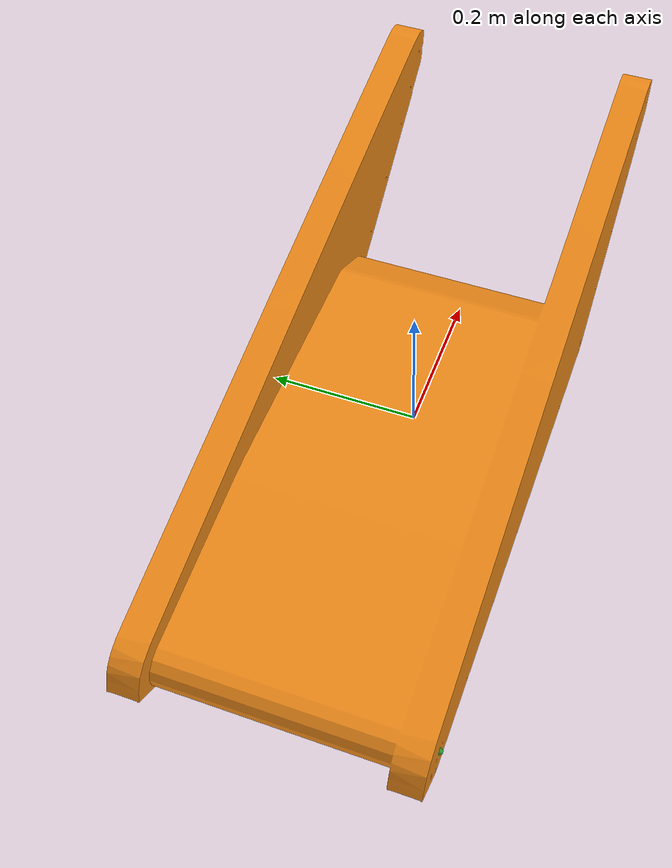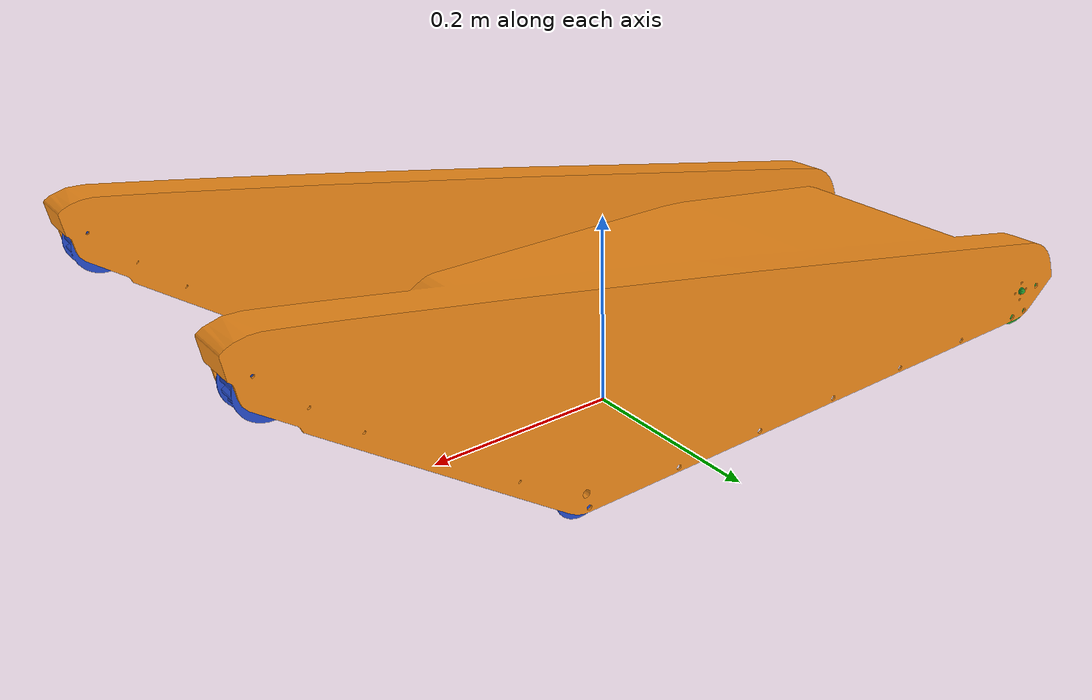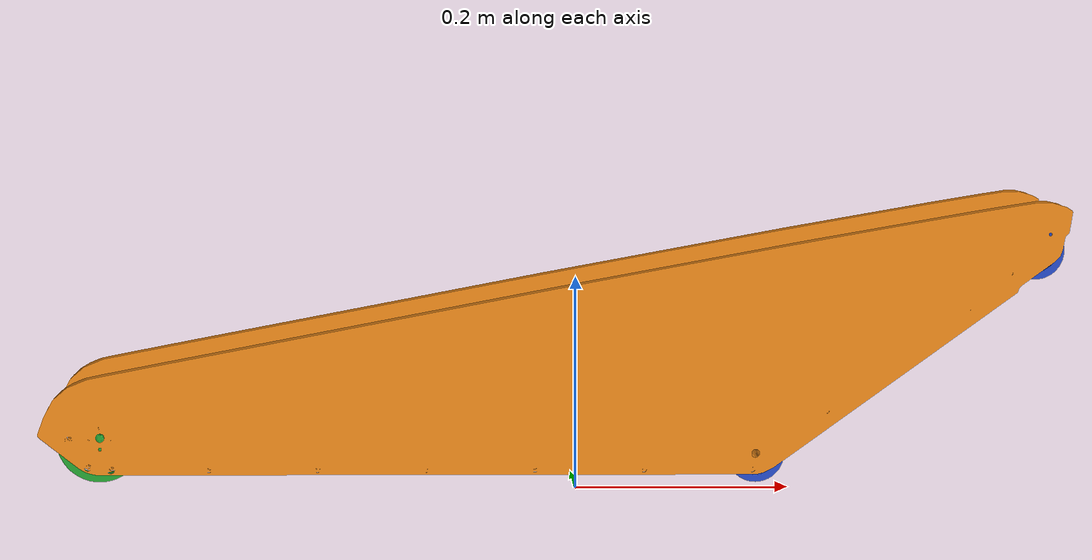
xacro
<?xml version='1.0'?>

<robot name="car" xmlns:xacro="http://www.ros.org/wiki/xacro">

  <xacro:include filename="$(find car_description)/urdf/mycar.gazebo"/>
  <xacro:include filename="$(find car_description)/urdf/materials.xacro"/>
  <xacro:include filename="$(find car_description)/urdf/macros.xacro"/>

  <xacro:macro name="transmission_block" params="joint_name idx">
      <transmission name="tran_${idx}">
        <type>transmission_interface/SimpleTransmission</type>
        <joint name="${joint_name}">
          <hardwareInterface>hardware_interface/EffortJointInterface</hardwareInterface>
        </joint>
        <actuator name="motor__${idx}">
          <hardwareInterface>hardware_interface/EffortJointInterface</hardwareInterface>
          <mechanicalReduction>1</mechanicalReduction>
        </actuator>
      </transmission>
  </xacro:macro>

<!-- base link -->
  <link name='base_link'>
    <inertial>
      <mass value="3.58774221136614"/>
      <origin xyz="0.0 0.0 0.094077" rpy="0 0 1.570795" />
      <inertia
        ixx="0.183425135997034"
        ixy="0.0126787219961619"
        ixz="1.62647538577349E-07"
        iyy="0.0252773163509939"
        iyz="1.1753114452545E-06"
        izz="0.175471420479131" />
    </inertial>

    <collision name='collision'>
      <origin xyz="0 0 0.2" rpy="0 -1.570795 0"/>
      <geometry>
        <mesh filename="package://car_description/meshes/base_link.STL"/>
      </geometry>
    </collision>

    <visual name='visual'>
      <origin xyz="0 0 0.2" rpy="0 -1.570795 0"/>
      <geometry>
        <mesh filename="package://car_description/meshes/base_link.STL"/>
      </geometry>
      <material name="orange"/>
    </visual>
  </link>

<!-- big pulley left -->
  <joint name="big_pulley_left_joint" type="continuous">
    <origin
      xyz="-0.44203 0.165 0.06"
      rpy="1.570795 0 1.570795"/>
    <parent link="base_link"/>
    <child link="big_pulley_left"/>
    <axis xyz="1 0 0"/>
    <safety_controller k_velocity="0"/>
    <joint_properties damping="0.7" friction="0.0"/>
  </joint>

  <link name='big_pulley_left'>
    <inertial>
      <mass value="0.5"/>
      <origin xyz="0 0 0" rpy="0 1.570795 0" />
      <cylinder_inertia m="0.5" r="0.05" h="0.025"/>
    </inertial>

    <collision name='collision'>
      <origin xyz="-0.025 0 0" rpy="0 3.14159 0"/>
      <geometry>
        <mesh filename="package://car_description/meshes/big_pulley_left.STL"/>
      </geometry>
    </collision>

    <visual name='visual'>
      <origin xyz="-0.025 0 0" rpy="0 3.14159 0"/>
      <geometry>
        <mesh filename="package://car_description/meshes/big_pulley_left.STL"/>
      </geometry>
      <material name="green"/>
    </visual>
  </link>

<!-- big pulley right -->
  <joint
    name="big_pulley_right_joint"
    type="continuous">
    <origin
      xyz="-0.44203 -0.165 0.06"
      rpy="1.570795 0 1.570795"/>
    <parent
      link="base_link" />
    <child
      link="big_pulley_right" />
    <axis
      xyz="1 0 0" />
    <safety_controller
      k_velocity="0" />
    <joint_properties damping="0.0" friction="0.0"/>
  </joint>

  <link
    name="big_pulley_right">
    <inertial>
      <origin xyz="0 0 0" rpy="0 1.570795 0" />
      <mass value="0.5" />
      <cylinder_inertia m="0.5" r="0.05" h="0.025"/>
    </inertial>
    <visual>
      <origin
        xyz="0.025 0 0"
        rpy="0 0 0" />
      <geometry>
        <mesh
          filename="package://car_description/meshes/big_pulley_right.STL" />
      </geometry>
      <material name="green"/>
    </visual>
    <collision>
      <origin
        xyz="0.025 0 0"
        rpy="0 0 0" />
      <geometry>
        <mesh
          filename="package://car_description/meshes/big_pulley_right.STL" />
      </geometry>
    </collision>
  </link>

<!-- middlepulley left -->
  <joint
    name="middle_pulley_left_joint"
    type="continuous">
    <origin
      xyz="0.161 0.163 0.045"
      rpy="1.570795 0 1.570795"/>
    <parent
      link="base_link" />
    <child
      link="middle_pulley_left" />
    <axis
      xyz="1 0 0" />
    <safety_controller
      k_velocity="0" />
  </joint>

  <link name="middle_pulley_left">
    <inertial>
      <origin
        xyz="0 0 0"
        rpy="0 1.570795 0" />
      <mass value="0.4" />
      <cylinder_inertia m="0.4" r="0.033" h="0.025"/>
    </inertial>
    <visual>
      <origin
        xyz="-0.0125 0 0"
        rpy="0 0 0" />
      <geometry>
        <mesh
          filename="package://car_description/meshes/middle_pulley_left.STL" />
      </geometry>
      <material name="blue"/>
    </visual>
    <collision>
      <origin
        xyz="-0.0125 0 0"
        rpy="0 0 0" />
      <geometry>
        <mesh
          filename="package://car_description/meshes/middle_pulley_left.STL" />
      </geometry>
    </collision>
  </link>

<!-- middlepulley right -->
  <joint name="middle_pulley_right_joint" type="continuous">
    <origin
      xyz="0.161 -0.163 0.045"
      rpy="1.570795 0 1.570795" />
    <parent link="base_link" />
    <child link="middle_pulley_right" />
    <axis xyz="1 0 0" />
    <safety_controller
      k_velocity="0" />
  </joint>

  <link name="middle_pulley_right">
    <inertial>
      <origin
        xyz="0 0 0"
        rpy="0 1.570795 0" />
      <mass value="0.4" />
      <cylinder_inertia m="0.4" r="0.033" h="0.025"/>
    </inertial>
    <visual>
      <origin
        xyz="0.0125 0 0"
        rpy="0 0 0" />
      <geometry>
        <mesh
          filename="package://car_description/meshes/middle_pulley_right.STL" />
      </geometry>
      <material name="blue"/>
    </visual>
    <collision>
      <origin
        xyz="0.0125 0 0"
        rpy="0 0 0" />
      <geometry>
        <mesh
          filename="package://car_description/meshes/middle_pulley_right.STL" />
      </geometry>
    </collision>
  </link>

<!-- frontpulley left -->
  <joint
    name="front_pulley_left_joint"
    type="continuous">
    <origin
      xyz="0.419 0.163 0.2315"
      rpy="1.570795 0 1.570795" />
    <parent
      link="base_link" />
    <child
      link="front_pulley_left" />
    <axis xyz="1 0 0" />
    <safety_controller
      k_velocity="0" />
  </joint>

  <link
    name="front_pulley_left">
    <inertial>
      <origin
        xyz="0 0 0"
        rpy="0 1.570795 0" />
      <mass value="0.4" />
      <cylinder_inertia m="0.4" r="0.033" h="0.025"/>
    </inertial>
    <visual>
      <origin
        xyz="-0.0125 0 0"
        rpy="0 0 0" />
      <geometry>
        <mesh
          filename="package://car_description/meshes/front_pulley_left.STL" />
      </geometry>
      <material name="blue"/>
    </visual>
    <collision>
      <origin
        xyz="-0.0125 0 0"
        rpy="0 0 0" />
      <geometry>
        <mesh
          filename="package://car_description/meshes/front_pulley_left.STL" />
      </geometry>
    </collision>
  </link>

<!-- frontpulley right -->
  <joint
    name="front_pulley_right_joint"
    type="continuous">
    <origin
      xyz="0.419 -0.163 0.2315"
      rpy="1.570795 0 1.570795" />
    <parent
      link="base_link" />
    <child
      link="front_pulley_right" />
    <axis xyz="1 0 0" />
    <safety_controller
      k_velocity="0" />
  </joint>

  <link name="front_pulley_right">
    <inertial>
      <origin
        xyz="0 0 0"
        rpy="0 1.570795 0" />
      <mass value="0.4" />
      <cylinder_inertia m="0.4" r="0.033" h="0.025"/>
    </inertial>
    <visual>
      <origin
        xyz="0.0125 0 0"
        rpy="0 0 0" />
      <geometry>
        <mesh
          filename="package://car_description/meshes/front_pulley_right.STL" />
      </geometry>
      <material name="blue"/>
    </visual>
    <collision>
      <origin
        xyz="0.0125 0 0"
        rpy="0 0 0" />
      <geometry>
        <mesh
          filename="package://car_description/meshes/front_pulley_right.STL" />
      </geometry>
    </collision>
  </link>

  <xacro:transmission_block joint_name="big_pulley_left_joint" idx="1"/>
  <xacro:transmission_block joint_name="big_pulley_right_joint" idx="2"/>
  <xacro:transmission_block joint_name="middle_pulley_left_joint" idx="3"/>
  <xacro:transmission_block joint_name="middle_pulley_right_joint" idx="4"/>
  <xacro:transmission_block joint_name="front_pulley_left_joint" idx="5"/>
  <xacro:transmission_block joint_name="front_pulley_right_joint" idx="6"/>

</robot>

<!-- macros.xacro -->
<robot>
  <macro name="cylinder_inertia" params="m r h">
    <inertia  ixx="${m*(3*r*r+h*h)/12}" ixy = "0" ixz = "0"
      iyy="${m*(3*r*r+h*h)/12}" iyz = "0"
      izz="${m*r*r/2}"
    />
  </macro>

  <macro name="box_inertia" params="m x y z">
    <inertia  ixx="${m*(y*y+z*z)/12}" ixy = "0" ixz = "0"
      iyy="${m*(x*x+z*z)/12}" iyz = "0"
      izz="${m*(x*x+z*z)/12}"
    />
  </macro>

  <macro name="sphere_inertia" params="m r">
    <inertia  ixx="${2*m*r*r/5}" ixy = "0" ixz = "0"
      iyy="${2*m*r*r/5}" iyz = "0"
      izz="${2*m*r*r/5}"
    />
  </macro>

</robot>
